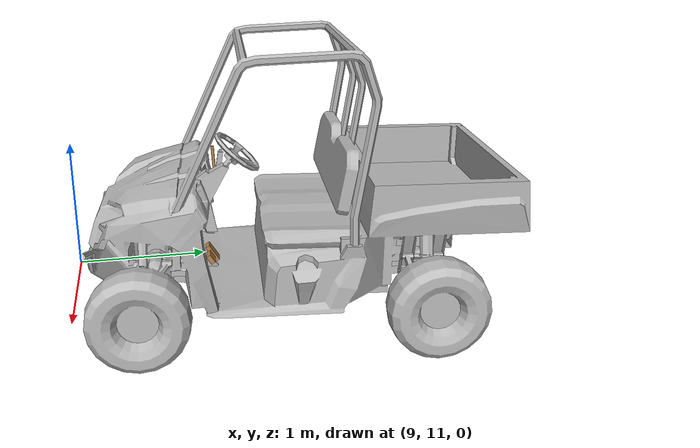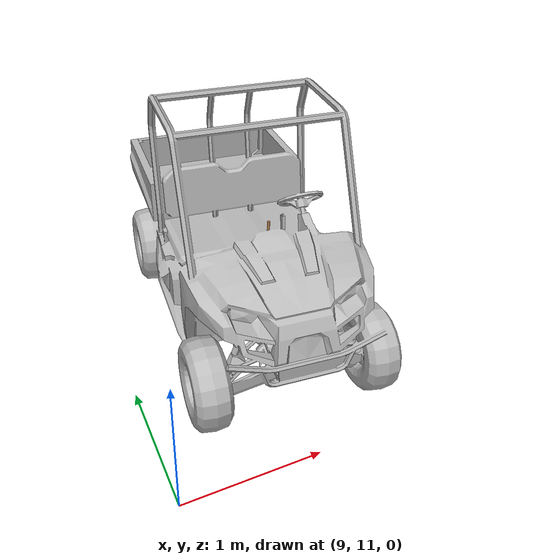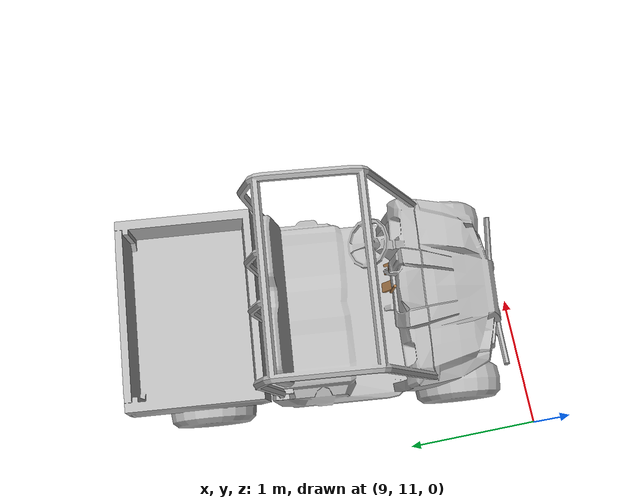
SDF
<sdf version="1.6">
 <world name="default">
  <model name="polaris_ranger_ev_clone_1_clone_clone_1">
   <static>true</static>
   <link name="chassis">
    <inertial>
     <mass>720</mass>
     <inertia><ixx>140</ixx><ixy>0</ixy><iyy>550</iyy><ixz>0</ixz><iyz>0</iyz><izz>550</izz></inertia>
    </inertial>
    <visual name="visual">
     <pose>0 0 0 0 0 -1.5708</pose>
     <geometry><mesh><uri>model://polaris_ranger_ev/meshes/polaris.dae</uri><scale>1 1 1</scale></mesh></geometry>
     <material>
      <script>
       <uri>model://polaris_ranger_ev/materials/scripts</uri>
       <uri>model://polaris_ranger_ev/materials/textures</uri>
       <name>Polaris/Diffuse</name>
      </script>
     </material>
    </visual>
    <collision name="chassis_bottom">
     <pose>0 0 0.35 0 -0 0</pose>
     <geometry><box><size>2 1 0.1</size></box></geometry>
    </collision>
    <collision name="cargo_bottom">
     <pose>-0.9 0 0.9 0 -0 0</pose>
     <geometry><box><size>0.9 1.2 0.01</size></box></geometry>
    </collision>
    <collision name="cargo_front">
     <pose>-0.45 0 1.025 0 -0 0</pose>
     <geometry><box><size>0.05 1.2 0.25</size></box></geometry>
    </collision>
    <collision name="cargo_back">
     <pose>-1.35 0 1.025 0 -0 0</pose>
     <geometry><box><size>0.05 1.2 0.25</size></box></geometry>
    </collision>
    <collision name="cargo_left">
     <pose>-0.9 0.6 1.025 0 -0 0</pose>
     <geometry><box><size>0.9 0.05 0.25</size></box></geometry>
    </collision>
    <collision name="cargo_right">
     <pose>-0.9 -0.6 1.025 0 -0 0</pose>
     <geometry><box><size>0.9 0.05 0.25</size></box></geometry>
    </collision>
    <collision name="seat">
     <pose>-0.1 0 0.625 0 -0 0</pose>
     <geometry><box><size>0.6 1 0.65</size></box></geometry>
    </collision>
    <collision name="seat_back">
     <pose>-0.3 0 1.125 0 -0.2 0</pose>
     <geometry><box><size>0.1 1 0.4</size></box></geometry>
    </collision>
    <collision name="engine">
     <pose>0.95 0 0.7 0 -0 0</pose>
     <geometry><box><size>0.58 1 0.8</size></box></geometry>
    </collision>
    <collision name="steering_column">
     <pose>0.525 0.3 1.025 0 -0.8 0</pose>
     <geometry><cylinder><radius>0.05</radius><length>0.45</length></cylinder></geometry>
    </collision>
   </link>
   <link name="rear_right_wheel">
    <pose>-0.85 -0.6 0.32 1.5708 -0 0</pose>
    <inertial>
     <mass>12</mass>
     <inertia><ixx>0.5</ixx><ixy>0</ixy><iyy>0.5</iyy><ixz>0</ixz><iyz>0</iyz><izz>1</izz></inertia>
    </inertial>
    <collision name="collision">
     <geometry><cylinder><radius>0.32</radius><length>0.23</length></cylinder></geometry>
     <surface>
      <friction><ode><mu>100000</mu><mu2>100000</mu2><slip1>0</slip1><slip2>0</slip2></ode></friction>
     </surface>
    </collision>
   </link>
   <joint name="rear_right_wheel_joint" type="revolute">
    <pose>0 0 -0.1 0 -0 0</pose>
    <child>rear_right_wheel</child>
    <parent>chassis</parent>
    <axis>
     <xyz>0 1 0</xyz>
     <use_parent_model_frame>1</use_parent_model_frame>
     <limit><lower>-1e+16</lower><upper>1e+16</upper></limit>
     <dynamics><spring_reference>0</spring_reference><spring_stiffness>0</spring_stiffness></dynamics>
    </axis>
    <physics><ode><limit><cfm>0</cfm><erp>0.9</erp></limit></ode></physics>
   </joint>
   <link name="rear_left_wheel">
    <pose>-0.85 0.6 0.32 1.5708 -0 0</pose>
    <inertial>
     <mass>12</mass>
     <inertia><ixx>0.5</ixx><ixy>0</ixy><iyy>0.5</iyy><ixz>0</ixz><iyz>0</iyz><izz>1</izz></inertia>
    </inertial>
    <collision name="collision">
     <geometry><cylinder><radius>0.32</radius><length>0.23</length></cylinder></geometry>
     <surface>
      <friction><ode><mu>100000</mu><mu2>100000</mu2><slip1>0</slip1><slip2>0</slip2></ode></friction>
     </surface>
    </collision>
   </link>
   <joint name="rear_left_wheel_joint" type="revolute">
    <child>rear_left_wheel</child>
    <parent>chassis</parent>
    <axis>
     <xyz>0 1 0</xyz>
     <use_parent_model_frame>1</use_parent_model_frame>
     <limit><lower>-1e+16</lower><upper>1e+16</upper></limit>
     <dynamics><spring_reference>0</spring_reference><spring_stiffness>0</spring_stiffness></dynamics>
    </axis>
    <physics><ode><limit><cfm>0</cfm><erp>0.9</erp></limit></ode></physics>
   </joint>
   <link name="front_right_wheel">
    <pose>1.03 -0.6 0.32 1.5708 -0 0</pose>
    <inertial>
     <mass>12</mass>
     <inertia><ixx>0.5</ixx><ixy>0</ixy><iyy>0.5</iyy><ixz>0</ixz><iyz>0</iyz><izz>1</izz></inertia>
    </inertial>
    <collision name="collision">
     <geometry><cylinder><radius>0.32</radius><length>0.23</length></cylinder></geometry>
     <surface>
      <friction><ode><mu>100000</mu><mu2>100000</mu2><slip1>0</slip1><slip2>0</slip2></ode></friction>
     </surface>
    </collision>
   </link>
   <link name="front_right_wheel_steering_block">
    <pose>1.03 -0.5 0.32 1.5708 -0 0</pose>
    <inertial>
     <mass>1</mass>
     <inertia><ixx>1</ixx><ixy>0</ixy><iyy>1</iyy><ixz>0</ixz><iyz>0</iyz><izz>1</izz></inertia>
    </inertial>
    <collision name="collision">
     <geometry><cylinder><radius>0.05</radius><length>0.01</length></cylinder></geometry>
    </collision>
   </link>
   <joint name="front_right_steering_joint" type="revolute">
    <child>front_right_wheel_steering_block</child>
    <parent>chassis</parent>
    <axis>
     <xyz>0 0 1</xyz>
     <limit><lower>-1</lower><upper>1</upper></limit>
     <use_parent_model_frame>1</use_parent_model_frame>
     <dynamics><spring_reference>0</spring_reference><spring_stiffness>0</spring_stiffness></dynamics>
    </axis>
    <physics><ode><limit><cfm>0</cfm><erp>0.9</erp></limit></ode></physics>
   </joint>
   <joint name="front_right_wheel_joint" type="revolute">
    <child>front_right_wheel</child>
    <parent>front_right_wheel_steering_block</parent>
    <axis>
     <xyz>0 1 0</xyz>
     <use_parent_model_frame>1</use_parent_model_frame>
     <limit><lower>-1e+16</lower><upper>1e+16</upper></limit>
     <dynamics><spring_reference>0</spring_reference><spring_stiffness>0</spring_stiffness></dynamics>
    </axis>
    <physics><ode><limit><cfm>0</cfm><erp>0.9</erp></limit></ode></physics>
   </joint>
   <link name="front_left_wheel">
    <pose>1.03 0.6 0.32 1.5708 -0 0</pose>
    <inertial>
     <mass>12</mass>
     <inertia><ixx>0.5</ixx><ixy>0</ixy><iyy>0.5</iyy><ixz>0</ixz><iyz>0</iyz><izz>1</izz></inertia>
    </inertial>
    <collision name="collision">
     <geometry><cylinder><radius>0.32</radius><length>0.23</length></cylinder></geometry>
     <surface>
      <friction><ode><mu>100000</mu><mu2>100000</mu2><slip1>0</slip1><slip2>0</slip2></ode></friction>
     </surface>
    </collision>
   </link>
   <link name="front_left_wheel_steering_block">
    <pose>1.03 0.5 0.32 1.5708 -0 0</pose>
    <inertial>
     <mass>1</mass>
     <inertia><ixx>1</ixx><ixy>0</ixy><iyy>1</iyy><ixz>0</ixz><iyz>0</iyz><izz>1</izz></inertia>
    </inertial>
    <collision name="collision">
     <geometry><cylinder><radius>0.05</radius><length>0.01</length></cylinder></geometry>
    </collision>
   </link>
   <joint name="front_left_steering_joint" type="revolute">
    <child>front_left_wheel_steering_block</child>
    <parent>chassis</parent>
    <axis>
     <xyz>0 0 1</xyz>
     <limit><lower>-1</lower><upper>1</upper></limit>
     <use_parent_model_frame>1</use_parent_model_frame>
     <dynamics><spring_reference>0</spring_reference><spring_stiffness>0</spring_stiffness></dynamics>
    </axis>
    <physics><ode><limit><cfm>0</cfm><erp>0.9</erp></limit></ode></physics>
   </joint>
   <joint name="front_left_wheel_joint" type="revolute">
    <child>front_left_wheel</child>
    <parent>front_left_wheel_steering_block</parent>
    <axis>
     <xyz>0 1 0</xyz>
     <use_parent_model_frame>1</use_parent_model_frame>
     <limit><lower>-1e+16</lower><upper>1e+16</upper></limit>
     <dynamics><spring_reference>0</spring_reference><spring_stiffness>0</spring_stiffness></dynamics>
    </axis>
    <physics><ode><limit><cfm>0</cfm><erp>0.9</erp></limit></ode></physics>
   </joint>
   <link name="gas_pedal">
    <pose>0.53 0.14 0.56 0 -1 0</pose>
    <gravity>0</gravity>
    <inertial>
     <mass>0.1</mass>
     <inertia><ixx>0.01</ixx><ixy>0</ixy><ixz>0</ixz><iyy>0.01</iyy><iyz>0</iyz><izz>0.01</izz></inertia>
    </inertial>
    <collision name="gas_pedal_collision"><geometry><box><size>0.12 0.07 0.03</size></box></geometry></collision>
    <visual name="gas_pedal_visual">
     <geometry><box><size>0.12 0.07 0.03</size></box></geometry>
     <material>
      <script><uri>file://media/materials/scripts/gazebo.material</uri><name>Gazebo/Wood</name></script>
      <ambient>0.2 0.2 0.2 1</ambient>
      <diffuse>0.2 0.2 0.2 1</diffuse>
      <specular>0.2 0.2 0.2 1</specular>
      <emissive>0.5 0.5 0.5 1</emissive>
     </material>
    </visual>
   </link>
   <link name="brake_pedal">
    <gravity>0</gravity>
    <pose>0.54 0.27 0.58 0 -1 0</pose>
    <inertial>
     <mass>0.1</mass>
     <inertia><ixx>0.01</ixx><ixy>0</ixy><ixz>0</ixz><iyy>0.01</iyy><iyz>0</iyz><izz>0.01</izz></inertia>
    </inertial>
    <collision name="brake_pedal_collision">
     <geometry><box><size>0.06 0.08 0.03</size></box></geometry>
    </collision>
    <visual name="brake_pedal_visual">
     <geometry><box><size>0.06 0.08 0.03</size></box></geometry>
     <material>
      <script><uri>file://media/materials/scripts/gazebo.material</uri><name>Gazebo/Wood</name></script>
      <ambient>0.2 0.2 0.2 1</ambient>
      <diffuse>0.2 0.2 0.2 1</diffuse>
      <specular>0.2 0.2 0.2 1</specular>
      <emissive>0.5 0.5 0.5 1</emissive>
     </material>
    </visual>
   </link>
   <link name="steering_wheel">
    <pose>0.37 0.3 1.2 0 -0.8 0</pose>
    <inertial>
     <mass>1</mass>
     <inertia><ixx>0.1</ixx><ixy>0</ixy><ixz>0</ixz><iyy>0.1</iyy><iyz>0</iyz><izz>1</izz></inertia>
    </inertial>
    <collision name="steering_wheel_post_left">
     <pose>0 0.08 0 1.5708 -0 0</pose>
     <geometry><cylinder><radius>0.02</radius><length>0.15</length></cylinder></geometry>
    </collision>
    <collision name="steering_wheel_post_right">
     <pose>0 -0.08 0 1.5708 -0 0</pose>
     <geometry><cylinder><radius>0.02</radius><length>0.15</length></cylinder></geometry>
    </collision>
    <collision name="steering_wheel_post_middle">
     <pose>-0.08 0 0 3.14159 1.57079 3.14159</pose>
     <geometry><cylinder><radius>0.02</radius><length>0.15</length></cylinder></geometry>
    </collision>
    <collision name="collision00">
     <pose>0.15 0 0 3.14159 1.57079 -1.57079</pose>
     <geometry><cylinder><length>0.105066</length><radius>0.01</radius></cylinder></geometry>
    </collision>
    <collision name="collision01">
     <pose>0.121353 0.088168 0 3.14159 1.57079 -0.942483</pose>
     <geometry><cylinder><length>0.105066</length><radius>0.01</radius></cylinder></geometry>
    </collision>
    <collision name="collision02">
     <pose>0.046353 0.142658 0 3.14159 1.57079 -0.314163</pose>
     <geometry><cylinder><length>0.105066</length><radius>0.01</radius></cylinder></geometry>
    </collision>
    <collision name="collision03">
     <pose>-0.046353 0.142658 0 3.14159 1.57079 0.314163</pose>
     <geometry><cylinder><length>0.105066</length><radius>0.01</radius></cylinder></geometry>
    </collision>
    <collision name="collision04">
     <pose>-0.121353 0.088168 0 -3.14159 1.57079 0.942483</pose>
     <geometry><cylinder><length>0.105066</length><radius>0.01</radius></cylinder></geometry>
    </collision>
    <collision name="collision05">
     <pose>-0.15 0 0 -3.14159 1.57079 1.57079</pose>
     <geometry><cylinder><length>0.105066</length><radius>0.01</radius></cylinder></geometry>
    </collision>
    <collision name="collision06">
     <pose>-0.121353 -0.088168 0 3.14159 1.57079 2.19912</pose>
     <geometry><cylinder><length>0.105066</length><radius>0.01</radius></cylinder></geometry>
    </collision>
    <collision name="collision07">
     <pose>-0.046353 -0.142658 0 -3.14159 1.57079 2.82743</pose>
     <geometry><cylinder><length>0.105066</length><radius>0.01</radius></cylinder></geometry>
    </collision>
    <collision name="collision08">
     <pose>0.046353 -0.142658 0 3.14159 1.57079 -2.82743</pose>
     <geometry><cylinder><length>0.105066</length><radius>0.01</radius></cylinder></geometry>
    </collision>
    <collision name="collision09">
     <pose>0.121353 -0.088168 0 -3.14159 1.57079 -2.19911</pose>
     <geometry><cylinder><length>0.105066</length><radius>0.01</radius></cylinder></geometry>
    </collision>
   </link>
   <link name="hand_brake">
    <pose>0.5 0 1.05 3.14159 -0.058407 3.14159</pose>
    <inertial>
     <mass>1</mass>
     <pose>0 0 -0.15 0 -0 0</pose>
     <inertia><ixx>0.1</ixx><ixy>0</ixy><ixz>0</ixz><iyy>0.1</iyy><iyz>0</iyz><izz>1</izz></inertia>
    </inertial>
    <collision name="hand_brake_collision">
     <pose>0 0 -0.1 0 -0 0</pose>
     <geometry><cylinder><radius>0.01</radius><length>0.2</length></cylinder></geometry>
    </collision>
    <visual name="hand_brake_visual">
     <pose>0 0 -0.1 0 -0 0</pose>
     <geometry><cylinder><radius>0.01</radius><length>0.2</length></cylinder></geometry>
     <material>
      <script><uri>file://media/materials/scripts/gazebo.material</uri><name>Gazebo/Wood</name></script>
     </material>
    </visual>
   </link>
   <joint name="gas_joint" type="prismatic">
    <parent>chassis</parent>
    <child>gas_pedal</child>
    <axis>
     <xyz>1 0 -1</xyz>
     <limit><lower>0</lower><upper>0.15</upper></limit>
     <use_parent_model_frame>1</use_parent_model_frame>
     <dynamics><spring_reference>0</spring_reference><spring_stiffness>0</spring_stiffness></dynamics>
    </axis>
   </joint>
   <joint name="brake_joint" type="prismatic">
    <parent>chassis</parent>
    <child>brake_pedal</child>
    <axis>
     <xyz>1 0 -0.6</xyz>
     <limit><lower>0</lower><upper>0.15</upper></limit>
     <use_parent_model_frame>1</use_parent_model_frame>
     <dynamics><spring_reference>0</spring_reference><spring_stiffness>0</spring_stiffness></dynamics>
    </axis>
   </joint>
   <joint name="steering_joint" type="revolute">
    <pose>0 0 0 1.5708 -0.8 0</pose>
    <parent>chassis</parent>
    <child>steering_wheel</child>
    <axis>
     <xyz>-1 0 1.023</xyz>
     <limit><lower>-7.853</lower><upper>7.853</upper></limit>
     <use_parent_model_frame>1</use_parent_model_frame>
     <dynamics><spring_reference>0</spring_reference><spring_stiffness>0</spring_stiffness></dynamics>
    </axis>
   </joint>
   <joint name="hand_brake_joint" type="revolute">
    <parent>chassis</parent>
    <child>hand_brake</child>
    <axis>
     <xyz>0 -1 0</xyz>
     <limit><lower>0</lower><upper>0.6</upper></limit>
     <use_parent_model_frame>1</use_parent_model_frame>
     <dynamics><spring_reference>0</spring_reference><spring_stiffness>0</spring_stiffness></dynamics>
    </axis>
   </joint>
   <pose>10.1159 12.5136 -4.3e-05 0 5e-05 -1.66734</pose>
  </model>
 </world>
</sdf>
